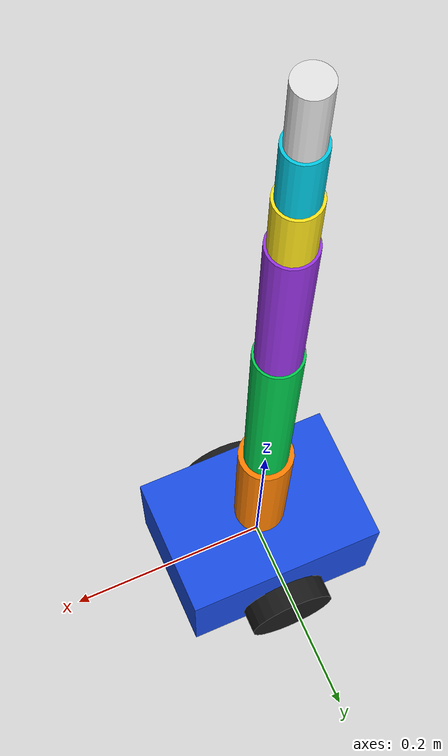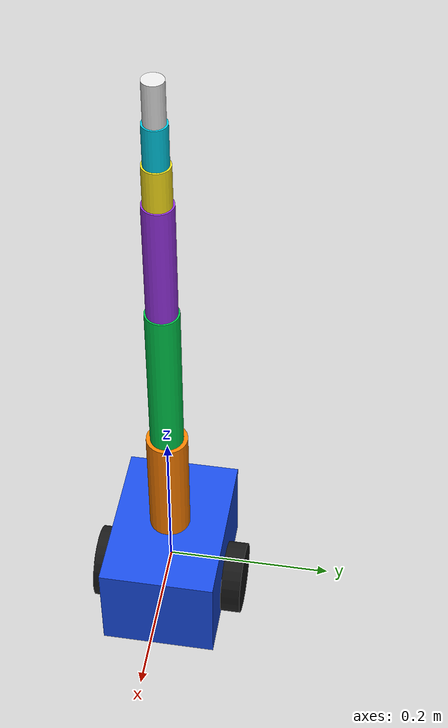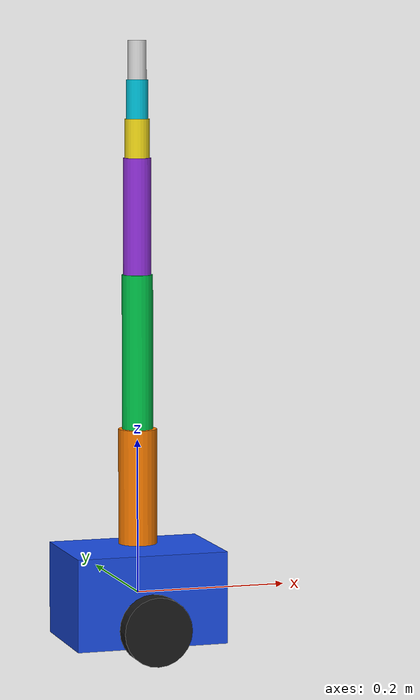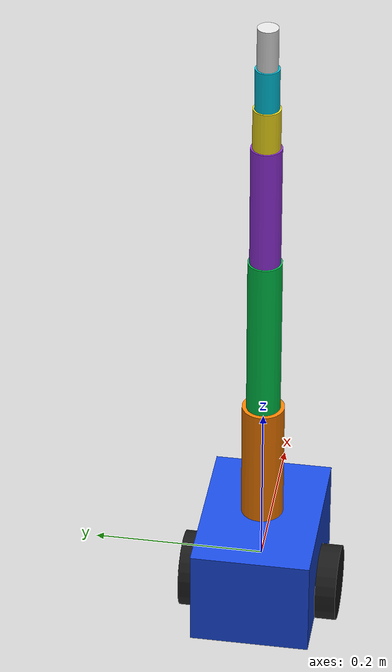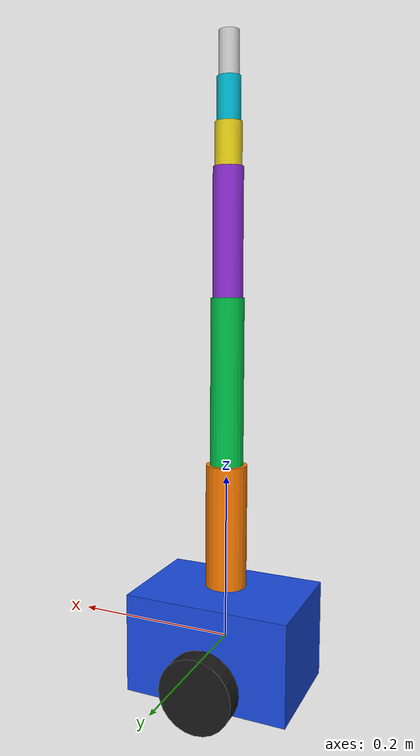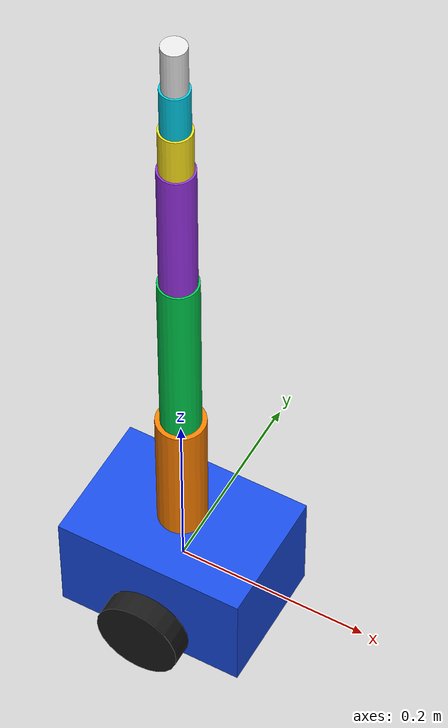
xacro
<?xml version="1.0"?>
<robot xmlns:xacro="http://www.ros.org/wiki/xacro"
       name="my_best_model">

    <!-- Base principal del robot -->
    <link name="base_link">
        <visual>
            <geometry>
                <box size="0.20 0.14 0.12"/>
            </geometry>
            <material name="blue">
                <color rgba="0.1 0.3 0.9 1.0"/>
            </material>
        </visual>
    </link>

<link name="arm_link_1">
    <visual>
        <geometry>
            <cylinder radius="0.025" length="0.15"/>
        </geometry>
        <material name="orange">
            <color rgba="1.0 0.5 0.0 1.0"/>
        </material>
    </visual>
</link>

<joint name="joint_1" type="prismatic">
    <parent link="base_link"/>
    <child link="arm_link_1"/>

    <origin xyz="0 0 0.14" rpy="0 0 0"/>
    <axis xyz="0 0 1"/>

    <limit lower="0.0"
           upper="0.12"
           effort="100"
           velocity="0.1"/>
</joint>

<link name="arm_link_2">
    <visual>
        <origin xyz="0 0 0.10" rpy="0 0 0"/>
        <geometry>
            <cylinder radius="0.02" length="0.20"/>
        </geometry>
        <material name="green">
            <color rgba="0.0 0.8 0.3 1.0"/>
        </material>
    </visual>
</link>

<joint name="joint_2" type="revolute">
    <parent link="arm_link_1"/>
    <child link="arm_link_2"/>

    <origin xyz="0 0 0.075" rpy="0 0 0"/>
    <axis xyz="0 1 0"/>

    <limit lower="-1.57"
           upper="1.57"
           effort="100"
           velocity="1.0"/>
</joint>

<link name="arm_link_3">
    <visual>
        <origin xyz="0 0 0.075" rpy="0 0 0"/>
        <geometry>
            <cylinder radius="0.018" length="0.15"/>
        </geometry>
        <material name="purple">
            <color rgba="0.6 0.2 0.9 1.0"/>
        </material>
    </visual>
</link>

<joint name="joint_3" type="revolute">
    <parent link="arm_link_2"/>
    <child link="arm_link_3"/>

    <origin xyz="0 0 0.20" rpy="0 0 0"/>
    <axis xyz="0 1 0"/>

    <limit lower="-1.57"
           upper="1.57"
           effort="100"
           velocity="1.0"/>
</joint>

<link name="left_wheel">
    <visual>
        <geometry>
            <cylinder radius="0.045" length="0.025"/>
        </geometry>
        <material name="black">
            <color rgba="0.1 0.1 0.1 1.0"/>
        </material>
    </visual>
</link>

<joint name="left_wheel_joint" type="continuous">
    <parent link="base_link"/>
    <child link="left_wheel"/>

    <origin xyz="0 0.082 -0.035" rpy="1.5708 0 0"/>
    <axis xyz="0 0 1"/>

    <limit effort="10" velocity="10"/>
</joint>

<link name="right_wheel">
    <visual>
        <geometry>
            <cylinder radius="0.045" length="0.025"/>
        </geometry>
        <material name="black">
            <color rgba="0.1 0.1 0.1 1.0"/>
        </material>
    </visual>
</link>

<joint name="right_wheel_joint" type="continuous">
    <parent link="base_link"/>
    <child link="right_wheel"/>

    <origin xyz="0 -0.082 -0.035" rpy="1.5708 0 0"/>
    <axis xyz="0 0 1"/>

    <limit effort="10" velocity="10"/>
</joint>
<!-- Enlaces adicionales del manipulador -->

<link name="arm_link_4">
    <visual>
        <origin xyz="0 0 0.025" rpy="0 0 0"/>
        <geometry>
            <cylinder radius="0.016" length="0.05"/>
        </geometry>
        <material name="yellow">
            <color rgba="1.0 0.9 0.1 1.0"/>
        </material>
    </visual>
</link>

<joint name="joint_4_fixed" type="fixed">
    <parent link="arm_link_3"/>
    <child link="arm_link_4"/>
    <origin xyz="0 0 0.15" rpy="0 0 0"/>
</joint>

<link name="arm_link_5">
    <visual>
        <origin xyz="0 0 0.025" rpy="0 0 0"/>
        <geometry>
            <cylinder radius="0.014" length="0.05"/>
        </geometry>
        <material name="cyan">
            <color rgba="0.0 0.8 0.9 1.0"/>
        </material>
    </visual>
</link>

<joint name="joint_5_fixed" type="fixed">
    <parent link="arm_link_4"/>
    <child link="arm_link_5"/>
    <origin xyz="0 0 0.05" rpy="0 0 0"/>
</joint>

<link name="arm_link_6">
    <visual>
        <origin xyz="0 0 0.025" rpy="0 0 0"/>
        <geometry>
            <cylinder radius="0.012" length="0.05"/>
        </geometry>
        <material name="white">
            <color rgba="0.9 0.9 0.9 1.0"/>
        </material>
    </visual>
</link>

<joint name="joint_6_fixed" type="fixed">
    <parent link="arm_link_5"/>
    <child link="arm_link_6"/>
    <origin xyz="0 0 0.05" rpy="0 0 0"/>
</joint>

</robot>
